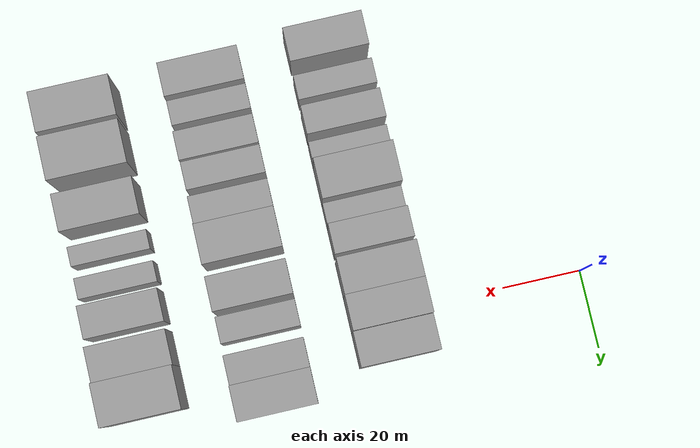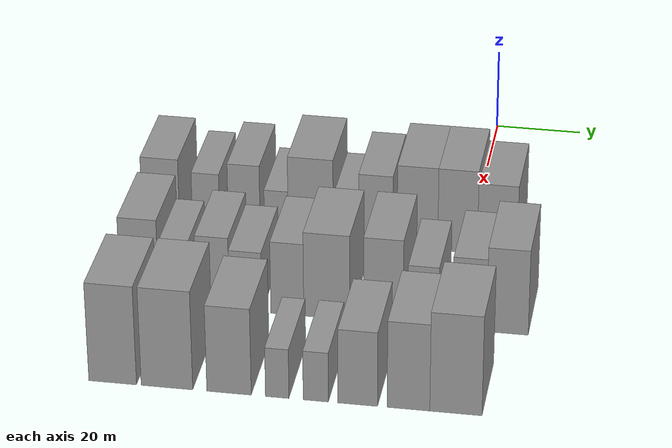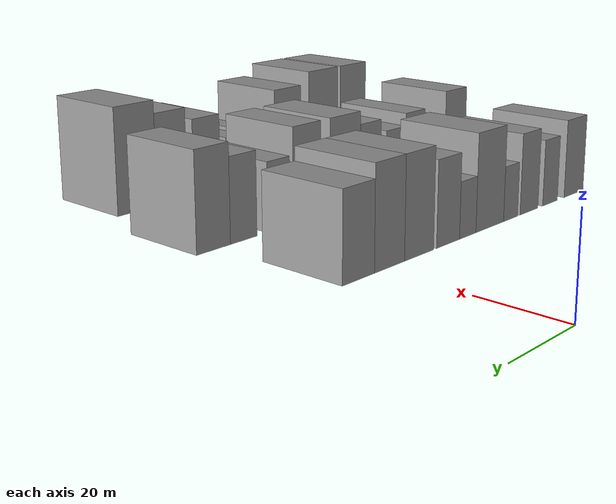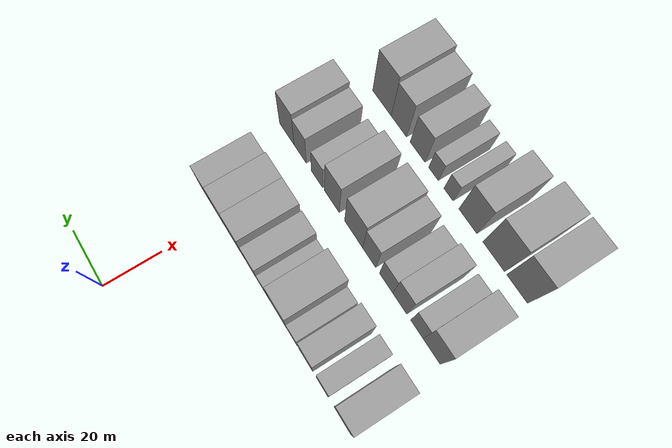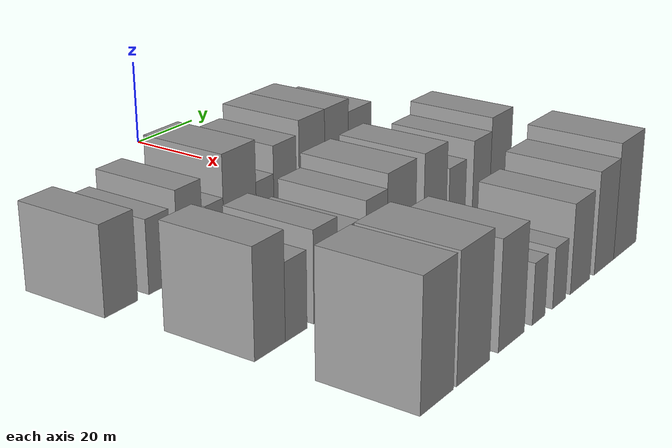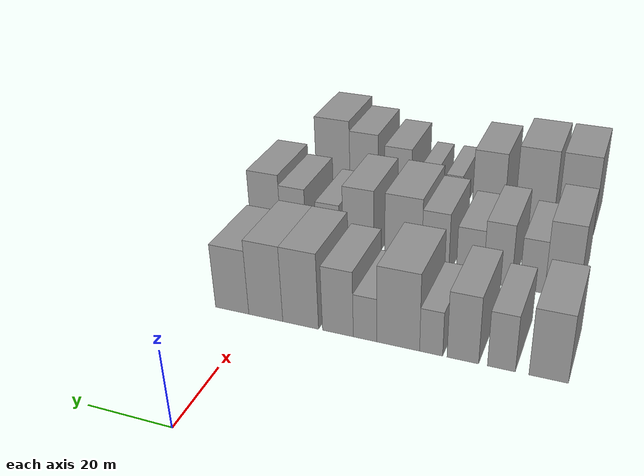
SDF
<sdf version="1.6">
 <world name="default">
  <model name="building_29">
   <static>1</static>
   <pose>50.0000 -69.8489 0 0.000000 0.000000 0.000000</pose>
   <link name="link">
    <pose>0 0 9.00 0 0 0</pose>
    <collision name="collision"><geometry><box><size>20.0000 8.6638 18.0000</size></box></geometry></collision>
    <visual name="visual">
     <cast_shadows>0</cast_shadows>
     <geometry><box><size>20.0000 8.6638 18.0000</size></box></geometry>
     <material>
      <script>
       <uri>model://grey_wall/materials/scripts</uri>
       <uri>model://grey_wall/materials/textures</uri>
       <name>vrc/grey_wall</name>
      </script>
     </material>
    </visual>
   </link>
  </model>
  <model name="building_30">
   <static>1</static>
   <pose>50.0000 -59.3672 0 0.000000 0.000000 0.000000</pose>
   <link name="link">
    <pose>0 0 7.50 0 0 0</pose>
    <collision name="collision"><geometry><box><size>20.0000 6.2996 15.0000</size></box></geometry></collision>
    <visual name="visual">
     <cast_shadows>0</cast_shadows>
     <geometry><box><size>20.0000 6.2996 15.0000</size></box></geometry>
     <material>
      <script>
       <uri>model://grey_wall/materials/scripts</uri>
       <uri>model://grey_wall/materials/textures</uri>
       <name>vrc/grey_wall</name>
      </script>
     </material>
    </visual>
   </link>
  </model>
  <model name="building_31">
   <static>1</static>
   <pose>50.0000 -50.5570 0 0.000000 0.000000 0.000000</pose>
   <link name="link">
    <pose>0 0 9.00 0 0 0</pose>
    <collision name="collision"><geometry><box><size>20.0000 7.3209 18.0000</size></box></geometry></collision>
    <visual name="visual">
     <cast_shadows>0</cast_shadows>
     <geometry><box><size>20.0000 7.3209 18.0000</size></box></geometry>
     <material>
      <script>
       <uri>model://grey_wall/materials/scripts</uri>
       <uri>model://grey_wall/materials/textures</uri>
       <name>vrc/grey_wall</name>
      </script>
     </material>
    </visual>
   </link>
  </model>
  <model name="building_32">
   <static>1</static>
   <pose>50.0000 -43.1725 0 0.000000 0.000000 0.000000</pose>
   <link name="link">
    <pose>0 0 6.00 0 0 0</pose>
    <collision name="collision"><geometry><box><size>20.0000 5.4480 12.0000</size></box></geometry></collision>
    <visual name="visual">
     <cast_shadows>0</cast_shadows>
     <geometry><box><size>20.0000 5.4480 12.0000</size></box></geometry>
     <material>
      <script>
       <uri>model://grey_wall/materials/scripts</uri>
       <uri>model://grey_wall/materials/textures</uri>
       <name>vrc/grey_wall</name>
      </script>
     </material>
    </visual>
   </link>
  </model>
  <model name="building_33">
   <static>1</static>
   <pose>50.0000 -35.2940 0 0.000000 0.000000 0.000000</pose>
   <link name="link">
    <pose>0 0 10.50 0 0 0</pose>
    <collision name="collision"><geometry><box><size>20.0000 10.3091 21.0000</size></box></geometry></collision>
    <visual name="visual">
     <cast_shadows>0</cast_shadows>
     <geometry><box><size>20.0000 10.3091 21.0000</size></box></geometry>
     <material>
      <script>
       <uri>model://grey_wall/materials/scripts</uri>
       <uri>model://grey_wall/materials/textures</uri>
       <name>vrc/grey_wall</name>
      </script>
     </material>
    </visual>
   </link>
  </model>
  <model name="building_34">
   <static>1</static>
   <pose>50.0000 -27.2335 0 0.000000 0.000000 0.000000</pose>
   <link name="link">
    <pose>0 0 6.00 0 0 0</pose>
    <collision name="collision"><geometry><box><size>20.0000 5.8118 12.0000</size></box></geometry></collision>
    <visual name="visual">
     <cast_shadows>0</cast_shadows>
     <geometry><box><size>20.0000 5.8118 12.0000</size></box></geometry>
     <material>
      <script>
       <uri>model://grey_wall/materials/scripts</uri>
       <uri>model://grey_wall/materials/textures</uri>
       <name>vrc/grey_wall</name>
      </script>
     </material>
    </visual>
   </link>
  </model>
  <model name="building_35">
   <static>1</static>
   <pose>50.0000 -20.4533 0 0.000000 0.000000 0.000000</pose>
   <link name="link">
    <pose>0 0 9.00 0 0 0</pose>
    <collision name="collision"><geometry><box><size>20.0000 7.7486 18.0000</size></box></geometry></collision>
    <visual name="visual">
     <cast_shadows>0</cast_shadows>
     <geometry><box><size>20.0000 7.7486 18.0000</size></box></geometry>
     <material>
      <script>
       <uri>model://grey_wall/materials/scripts</uri>
       <uri>model://grey_wall/materials/textures</uri>
       <name>vrc/grey_wall</name>
      </script>
     </material>
    </visual>
   </link>
  </model>
  <model name="building_36">
   <static>1</static>
   <pose>50.0000 -10.9600 0 0.000000 0.000000 0.000000</pose>
   <link name="link">
    <pose>0 0 10.50 0 0 0</pose>
    <collision name="collision"><geometry><box><size>20.0000 9.2382 21.0000</size></box></geometry></collision>
    <visual name="visual">
     <cast_shadows>0</cast_shadows>
     <geometry><box><size>20.0000 9.2382 21.0000</size></box></geometry>
     <material>
      <script>
       <uri>model://grey_wall/materials/scripts</uri>
       <uri>model://grey_wall/materials/textures</uri>
       <name>vrc/grey_wall</name>
      </script>
     </material>
    </visual>
   </link>
  </model>
  <model name="building_37">
   <static>1</static>
   <pose>50.0000 -1.8528 0 0.000000 0.000000 0.000000</pose>
   <link name="link">
    <pose>0 0 10.50 0 0 0</pose>
    <collision name="collision"><geometry><box><size>20.0000 8.9762 21.0000</size></box></geometry></collision>
    <visual name="visual">
     <cast_shadows>0</cast_shadows>
     <geometry><box><size>20.0000 8.9762 21.0000</size></box></geometry>
     <material>
      <script>
       <uri>model://grey_wall/materials/scripts</uri>
       <uri>model://grey_wall/materials/textures</uri>
       <name>vrc/grey_wall</name>
      </script>
     </material>
    </visual>
   </link>
  </model>
  <model name="building_38">
   <static>1</static>
   <pose>50.0000 7.1288 0 0.000000 0.000000 0.000000</pose>
   <link name="link">
    <pose>0 0 9.00 0 0 0</pose>
    <collision name="collision"><geometry><box><size>20.0000 8.9869 18.0000</size></box></geometry></collision>
    <visual name="visual">
     <cast_shadows>0</cast_shadows>
     <geometry><box><size>20.0000 8.9869 18.0000</size></box></geometry>
     <material>
      <script>
       <uri>model://grey_wall/materials/scripts</uri>
       <uri>model://grey_wall/materials/textures</uri>
       <name>vrc/grey_wall</name>
      </script>
     </material>
    </visual>
   </link>
  </model>
  <model name="building_102">
   <static>1</static>
   <pose>82.0000 -67.5923 0 0.000000 0.000000 0.000000</pose>
   <link name="link">
    <pose>0 0 10.50 0 0 0</pose>
    <collision name="collision"><geometry><box><size>20.0000 8.5742 21.0000</size></box></geometry></collision>
    <visual name="visual">
     <cast_shadows>0</cast_shadows>
     <geometry><box><size>20.0000 8.5742 21.0000</size></box></geometry>
     <material>
      <script>
       <uri>model://grey_wall/materials/scripts</uri>
       <uri>model://grey_wall/materials/textures</uri>
       <name>vrc/grey_wall</name>
      </script>
     </material>
    </visual>
   </link>
  </model>
  <model name="building_103">
   <static>1</static>
   <pose>82.0000 -60.1363 0 0.000000 0.000000 0.000000</pose>
   <link name="link">
    <pose>0 0 7.50 0 0 0</pose>
    <collision name="collision"><geometry><box><size>20.0000 6.3377 15.0000</size></box></geometry></collision>
    <visual name="visual">
     <cast_shadows>0</cast_shadows>
     <geometry><box><size>20.0000 6.3377 15.0000</size></box></geometry>
     <material>
      <script>
       <uri>model://grey_wall/materials/scripts</uri>
       <uri>model://grey_wall/materials/textures</uri>
       <name>vrc/grey_wall</name>
      </script>
     </material>
    </visual>
   </link>
  </model>
  <model name="building_104">
   <static>1</static>
   <pose>82.0000 -51.3059 0 0.000000 0.000000 0.000000</pose>
   <link name="link">
    <pose>0 0 9.00 0 0 0</pose>
    <collision name="collision"><geometry><box><size>20.0000 7.3232 18.0000</size></box></geometry></collision>
    <visual name="visual">
     <cast_shadows>0</cast_shadows>
     <geometry><box><size>20.0000 7.3232 18.0000</size></box></geometry>
     <material>
      <script>
       <uri>model://grey_wall/materials/scripts</uri>
       <uri>model://grey_wall/materials/textures</uri>
       <name>vrc/grey_wall</name>
      </script>
     </material>
    </visual>
   </link>
  </model>
  <model name="building_105">
   <static>1</static>
   <pose>82.0000 -44.0689 0 0.000000 0.000000 0.000000</pose>
   <link name="link">
    <pose>0 0 7.50 0 0 0</pose>
    <collision name="collision"><geometry><box><size>20.0000 7.1507 15.0000</size></box></geometry></collision>
    <visual name="visual">
     <cast_shadows>0</cast_shadows>
     <geometry><box><size>20.0000 7.1507 15.0000</size></box></geometry>
     <material>
      <script>
       <uri>model://grey_wall/materials/scripts</uri>
       <uri>model://grey_wall/materials/textures</uri>
       <name>vrc/grey_wall</name>
      </script>
     </material>
    </visual>
   </link>
  </model>
  <model name="building_106">
   <static>1</static>
   <pose>82.0000 -34.8706 0 0.000000 0.000000 0.000000</pose>
   <link name="link">
    <pose>0 0 9.00 0 0 0</pose>
    <collision name="collision"><geometry><box><size>20.0000 7.2458 18.0000</size></box></geometry></collision>
    <visual name="visual">
     <cast_shadows>0</cast_shadows>
     <geometry><box><size>20.0000 7.2458 18.0000</size></box></geometry>
     <material>
      <script>
       <uri>model://grey_wall/materials/scripts</uri>
       <uri>model://grey_wall/materials/textures</uri>
       <name>vrc/grey_wall</name>
      </script>
     </material>
    </visual>
   </link>
  </model>
  <model name="building_107">
   <static>1</static>
   <pose>82.0000 -26.1908 0 0.000000 0.000000 0.000000</pose>
   <link name="link">
    <pose>0 0 10.50 0 0 0</pose>
    <collision name="collision"><geometry><box><size>20.0000 10.1138 21.0000</size></box></geometry></collision>
    <visual name="visual">
     <cast_shadows>0</cast_shadows>
     <geometry><box><size>20.0000 10.1138 21.0000</size></box></geometry>
     <material>
      <script>
       <uri>model://grey_wall/materials/scripts</uri>
       <uri>model://grey_wall/materials/textures</uri>
       <name>vrc/grey_wall</name>
      </script>
     </material>
    </visual>
   </link>
  </model>
  <model name="building_108">
   <static>1</static>
   <pose>82.0000 -13.7971 0 0.000000 0.000000 0.000000</pose>
   <link name="link">
    <pose>0 0 10.50 0 0 0</pose>
    <collision name="collision"><geometry><box><size>20.0000 8.6737 21.0000</size></box></geometry></collision>
    <visual name="visual">
     <cast_shadows>0</cast_shadows>
     <geometry><box><size>20.0000 8.6737 21.0000</size></box></geometry>
     <material>
      <script>
       <uri>model://grey_wall/materials/scripts</uri>
       <uri>model://grey_wall/materials/textures</uri>
       <name>vrc/grey_wall</name>
      </script>
     </material>
    </visual>
   </link>
  </model>
  <model name="building_109">
   <static>1</static>
   <pose>82.0000 -5.1070 0 0.000000 0.000000 0.000000</pose>
   <link name="link">
    <pose>0 0 7.50 0 0 0</pose>
    <collision name="collision"><geometry><box><size>20.0000 6.7066 15.0000</size></box></geometry></collision>
    <visual name="visual">
     <cast_shadows>0</cast_shadows>
     <geometry><box><size>20.0000 6.7066 15.0000</size></box></geometry>
     <material>
      <script>
       <uri>model://grey_wall/materials/scripts</uri>
       <uri>model://grey_wall/materials/textures</uri>
       <name>vrc/grey_wall</name>
      </script>
     </material>
    </visual>
   </link>
  </model>
  <model name="building_110">
   <static>1</static>
   <pose>82.0000 4.9495 0 0.000000 0.000000 0.000000</pose>
   <link name="link">
    <pose>0 0 9.00 0 0 0</pose>
    <collision name="collision"><geometry><box><size>20.0000 7.4064 18.0000</size></box></geometry></collision>
    <visual name="visual">
     <cast_shadows>0</cast_shadows>
     <geometry><box><size>20.0000 7.4064 18.0000</size></box></geometry>
     <material>
      <script>
       <uri>model://grey_wall/materials/scripts</uri>
       <uri>model://grey_wall/materials/textures</uri>
       <name>vrc/grey_wall</name>
      </script>
     </material>
    </visual>
   </link>
  </model>
  <model name="building_111">
   <static>1</static>
   <pose>82.0000 13.1354 0 0.000000 0.000000 0.000000</pose>
   <link name="link">
    <pose>0 0 10.50 0 0 0</pose>
    <collision name="collision"><geometry><box><size>20.0000 8.9654 21.0000</size></box></geometry></collision>
    <visual name="visual">
     <cast_shadows>0</cast_shadows>
     <geometry><box><size>20.0000 8.9654 21.0000</size></box></geometry>
     <material>
      <script>
       <uri>model://grey_wall/materials/scripts</uri>
       <uri>model://grey_wall/materials/textures</uri>
       <name>vrc/grey_wall</name>
      </script>
     </material>
    </visual>
   </link>
  </model>
  <model name="building_176">
   <static>1</static>
   <pose>114.0000 -66.1539 0 0.000000 0.000000 0.000000</pose>
   <link name="link">
    <pose>0 0 12.00 0 0 0</pose>
    <collision name="collision"><geometry><box><size>20.0000 10.2007 24.0000</size></box></geometry></collision>
    <visual name="visual">
     <cast_shadows>0</cast_shadows>
     <geometry><box><size>20.0000 10.2007 24.0000</size></box></geometry>
     <material>
      <script>
       <uri>model://grey_wall/materials/scripts</uri>
       <uri>model://grey_wall/materials/textures</uri>
       <name>vrc/grey_wall</name>
      </script>
     </material>
    </visual>
   </link>
  </model>
  <model name="building_177">
   <static>1</static>
   <pose>114.0000 -54.5655 0 0.000000 0.000000 0.000000</pose>
   <link name="link">
    <pose>0 0 12.00 0 0 0</pose>
    <collision name="collision"><geometry><box><size>20.0000 10.9760 24.0000</size></box></geometry></collision>
    <visual name="visual">
     <cast_shadows>0</cast_shadows>
     <geometry><box><size>20.0000 10.9760 24.0000</size></box></geometry>
     <material>
      <script>
       <uri>model://grey_wall/materials/scripts</uri>
       <uri>model://grey_wall/materials/textures</uri>
       <name>vrc/grey_wall</name>
      </script>
     </material>
    </visual>
   </link>
  </model>
  <model name="building_178">
   <static>1</static>
   <pose>114.0000 -41.3701 0 0.000000 0.000000 0.000000</pose>
   <link name="link">
    <pose>0 0 10.50 0 0 0</pose>
    <collision name="collision"><geometry><box><size>20.0000 9.4148 21.0000</size></box></geometry></collision>
    <visual name="visual">
     <cast_shadows>0</cast_shadows>
     <geometry><box><size>20.0000 9.4148 21.0000</size></box></geometry>
     <material>
      <script>
       <uri>model://grey_wall/materials/scripts</uri>
       <uri>model://grey_wall/materials/textures</uri>
       <name>vrc/grey_wall</name>
      </script>
     </material>
    </visual>
   </link>
  </model>
  <model name="building_179">
   <static>1</static>
   <pose>114.0000 -31.1896 0 0.000000 0.000000 0.000000</pose>
   <link name="link">
    <pose>0 0 6.00 0 0 0</pose>
    <collision name="collision"><geometry><box><size>20.0000 4.9461 12.0000</size></box></geometry></collision>
    <visual name="visual">
     <cast_shadows>0</cast_shadows>
     <geometry><box><size>20.0000 4.9461 12.0000</size></box></geometry>
     <material>
      <script>
       <uri>model://grey_wall/materials/scripts</uri>
       <uri>model://grey_wall/materials/textures</uri>
       <name>vrc/grey_wall</name>
      </script>
     </material>
    </visual>
   </link>
  </model>
  <model name="building_180">
   <static>1</static>
   <pose>114.0000 -23.0652 0 0.000000 0.000000 0.000000</pose>
   <link name="link">
    <pose>0 0 6.00 0 0 0</pose>
    <collision name="collision"><geometry><box><size>20.0000 5.3028 12.0000</size></box></geometry></collision>
    <visual name="visual">
     <cast_shadows>0</cast_shadows>
     <geometry><box><size>20.0000 5.3028 12.0000</size></box></geometry>
     <material>
      <script>
       <uri>model://grey_wall/materials/scripts</uri>
       <uri>model://grey_wall/materials/textures</uri>
       <name>vrc/grey_wall</name>
      </script>
     </material>
    </visual>
   </link>
  </model>
  <model name="building_181">
   <static>1</static>
   <pose>114.0000 -14.2628 0 0.000000 0.000000 0.000000</pose>
   <link name="link">
    <pose>0 0 9.00 0 0 0</pose>
    <collision name="collision"><geometry><box><size>20.0000 8.3018 18.0000</size></box></geometry></collision>
    <visual name="visual">
     <cast_shadows>0</cast_shadows>
     <geometry><box><size>20.0000 8.3018 18.0000</size></box></geometry>
     <material>
      <script>
       <uri>model://grey_wall/materials/scripts</uri>
       <uri>model://grey_wall/materials/textures</uri>
       <name>vrc/grey_wall</name>
      </script>
     </material>
    </visual>
   </link>
  </model>
  <model name="building_182">
   <static>1</static>
   <pose>114.0000 -3.6718 0 0.000000 0.000000 0.000000</pose>
   <link name="link">
    <pose>0 0 10.50 0 0 0</pose>
    <collision name="collision"><geometry><box><size>20.0000 8.8803 21.0000</size></box></geometry></collision>
    <visual name="visual">
     <cast_shadows>0</cast_shadows>
     <geometry><box><size>20.0000 8.8803 21.0000</size></box></geometry>
     <material>
      <script>
       <uri>model://grey_wall/materials/scripts</uri>
       <uri>model://grey_wall/materials/textures</uri>
       <name>vrc/grey_wall</name>
      </script>
     </material>
    </visual>
   </link>
  </model>
  <model name="building_183">
   <static>1</static>
   <pose>114.0000 6.1896 0 0.000000 0.000000 0.000000</pose>
   <link name="link">
    <pose>0 0 12.00 0 0 0</pose>
    <collision name="collision"><geometry><box><size>20.0000 10.8426 24.0000</size></box></geometry></collision>
    <visual name="visual">
     <cast_shadows>0</cast_shadows>
     <geometry><box><size>20.0000 10.8426 24.0000</size></box></geometry>
     <material>
      <script>
       <uri>model://grey_wall/materials/scripts</uri>
       <uri>model://grey_wall/materials/textures</uri>
       <name>vrc/grey_wall</name>
      </script>
     </material>
    </visual>
   </link>
  </model>
 </world>
</sdf>
